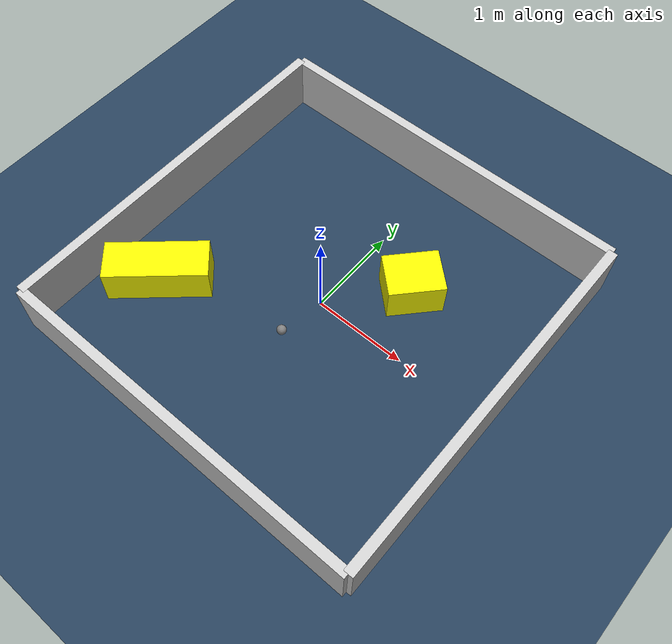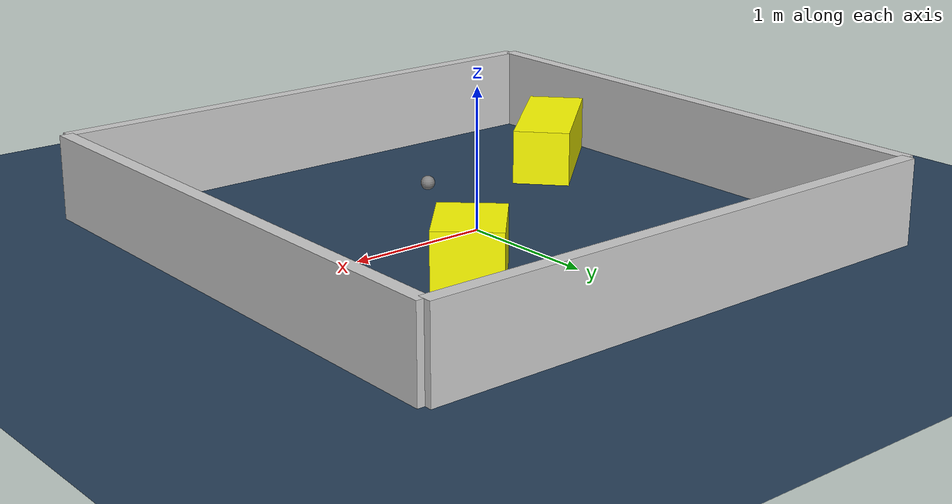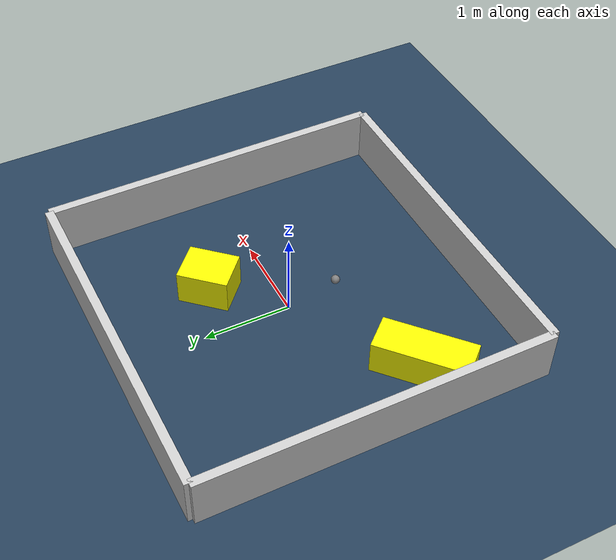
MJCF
<?xml version="1.0" ?>
<mujoco model="generated_environment">
  <option timestep="0.01" integrator="RK4" cone="elliptic"/>
  <default>
    <geom density="1"/>
  </default>
  <asset>
    <texture builtin="gradient" height="3072" rgb1="0.3 0.5 0.7" rgb2="0 0 0" type="skybox" width="512"/>
    <texture builtin="checker" height="300" mark="edge" markrgb="0.8 0.8 0.8" name="groundplane" rgb1="0.2 0.3 0.4" rgb2="0.1 0.2 0.3" type="2d" width="300"/>
    <material name="groundplane" reflectance="0.2" texrepeat="5 5" texture="groundplane" texuniform="true"/>
    <material name="robot" rgba="0.0 1.0 0.0 1"/>
  </asset>
  <worldbody>
    <light dir="0 0 -1" directional="true" pos="0 0 1.5"/>
    <geom condim="4" friction="1.0 0.005 0.001" material="groundplane" name="floor" size="0 0 0.05" type="plane"/>
    <body name="walls">
      <geom name="wall_1" condim="4" pos="-2.0 0.0 0.3" rgba="0.800000011920929 0.800000011920929 0.800000011920929 1.0" size="0.05 2.0 0.3" type="box"/>
      <geom name="wall_2" condim="4" pos="2.0 0.0 0.3" rgba="0.800000011920929 0.800000011920929 0.800000011920929 1.0" size="0.05 2.0 0.3" type="box"/>
      <geom name="wall_3" condim="4" pos="0.0 -2.0 0.3" rgba="0.800000011920929 0.800000011920929 0.800000011920929 1.0" size="2.0 0.05 0.3" type="box"/>
      <geom name="wall_4" condim="4" pos="0.0 2.0 0.3" rgba="0.800000011920929 0.800000011920929 0.800000011920929 1.0" size="2.0 0.05 0.3" type="box"/>
    </body>
    <body name="robot">
      <joint name="joint_x" type="slide" pos="0 0 0" axis="1 0 0"/>
      <joint name="joint_y" type="slide" pos="0 0 0" axis="0 1 0"/>
      <geom name="robot" type="sphere" pos="-0.012990182857737675 -0.5634737406796659 0.2" size="0.05" mass="5." friction="1.0 0.005 0.0001" condim="4"/>
      <site name="sensor_ball"/>
    </body>
    <body name="obstacle_1_movable">
      <geom name="obstacle_1_movable" condim="4" pos="0.6184339720644447 0.6776376506991746 0.2" euler="0 0 137.49401131161252" friction="1.0 0.005 0.001" rgba="1 1 0 1" size="0.231218833612388 0.28755215852536226 0.2" type="box" mass="0.1"/>
      <joint type="free"/>
    </body>
    <body name="obstacle_2_movable">
      <geom name="obstacle_2_movable" condim="4" pos="-1.4121803883952977 -0.8548471843524303 0.2" euler="0 0 131.8527692668537" friction="1.0 0.005 0.001" rgba="1 1 0 1" size="0.20679816158322417 0.525871245962189 0.2" type="box" mass="0.1"/>
      <joint type="free"/>
    </body>
  </worldbody>
  <actuator>
    <motor name="actuator_x" joint="joint_x" gear="1" ctrlrange="-1 1"/>
    <motor name="actuator_y" joint="joint_y" gear="1" ctrlrange="-1 1"/>
  </actuator>
</mujoco>
